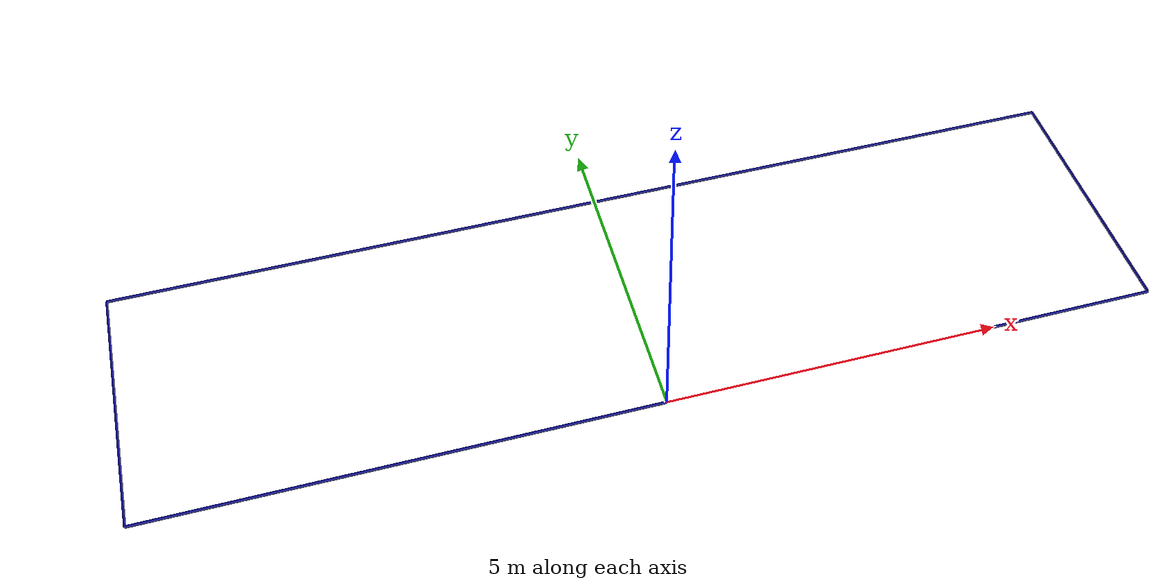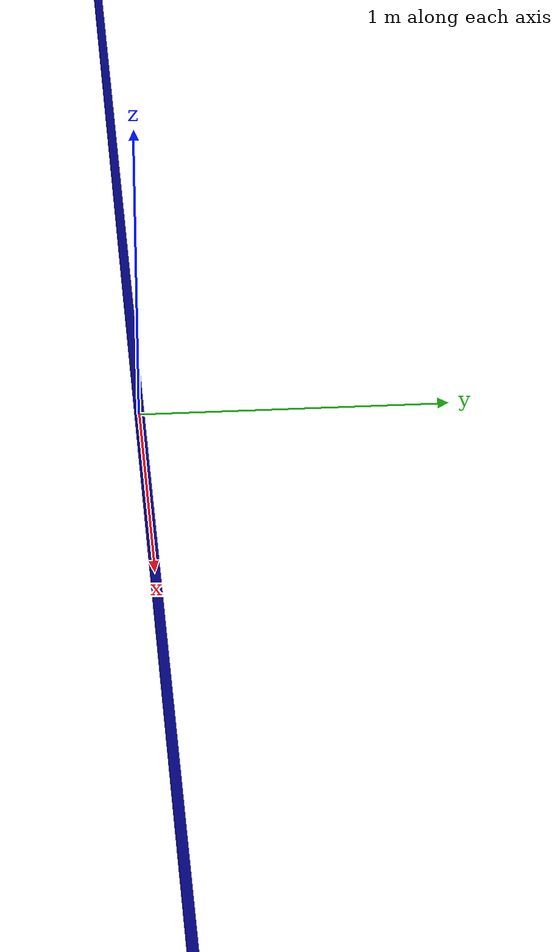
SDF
<?xml version='1.0'?>
<sdf version='1.4'>
  <model name="single-I">
    <static>true</static>

    <link name='left_side'>
      <pose>0 0 0 0 0 1.5707</pose>
      <collision name='collision'>
        <geometry>
         <box>
            <size>0.03 15 .03</size>
         </box>
        </geometry>
      </collision>

      <visual name='lvisual'>
        <geometry>
          <box>
            <size>0.03 15 .03</size>
         </box>
        </geometry>
        <material>
          <ambient>0.0 0.0 0.5 1.0</ambient>
          <diffuse>0.0 0.0 .5 1.00</diffuse>
          <specular>0.0 0.0 .5 1.0</specular>
          <emissive>0.0 0.0 .5 1.0</emissive>
        </material>
      </visual>

    </link>
    <link name='right_side'>

      <pose>0 4 0 0 0 1.5707</pose>
      <collision name='rcollision'>
        <geometry>
          <box>
            <size>0.03 15 .03</size>
         </box>
        </geometry>
      </collision>

      <visual name='rvisual'>
        <geometry>
          <box>
            <size>0.03 15 .03</size>
         </box>
        </geometry>
        <material>
          <ambient>0.0 0.0 0.5 1.0</ambient>
          <diffuse>0.0 0.0 .5 1.00</diffuse>
          <specular>0.0 0.0 .5 1.0</specular>
          <emissive>0.0 0.0 .5 1.0</emissive>
        </material>
      </visual>

    </link>
    <link name='garage_side'>

      <pose>7.5 2 0 0 0 0</pose>
      <collision name='gcollision'>
        <geometry>
          <box>
            <size>0.03 4 .03</size>
         </box>
        </geometry>
      </collision>

      <visual name='gvisual'>
        <geometry>
          <box>
            <size>0.03 4 .03</size>
         </box>
        </geometry>
        <material>
          <ambient>0.0 0.0 0.5 1.0</ambient>
          <diffuse>0.0 0.0 .5 1.00</diffuse>
          <specular>0.0 0.0 .5 1.0</specular>
          <emissive>0.0 0.0 .5 1.0</emissive>
        </material>
      </visual>

    </link>
    <link name='manuevering_side'>

      <pose>-7.5 2 0 0 0 0</pose>
      <collision name='mcollision'>
        <geometry>
          <box>
            <size>0.03 4 .03</size>
         </box>
        </geometry>
      </collision>

      <visual name='mvisual'>
        <geometry>
          <box>
            <size>0.03 4 .03</size>
         </box>
        </geometry>
        <material>
          <ambient>0.0 0.0 0.5 1.0</ambient>
          <diffuse>0.0 0.0 .5 1.00</diffuse>
          <specular>0.0 0.0 .5 1.0</specular>
          <emissive>0.0 0.0 .5 1.0</emissive>
        </material>
      </visual>

    </link>
    <joint type='fixed' name='gr'>
      <child>right_side</child>
      <parent>garage_side</parent>
    </joint>
    <joint type='fixed' name='gl'>
      <child>left_side</child>
      <parent>garage_side</parent>
    </joint>
    <joint type='fixed' name='mr'>
      <child>right_side</child>
      <parent>manuevering_side</parent>
    </joint>
    <joint type='fixed' name='ml'>
      <child>manuevering_side</child>
      <parent>left_side</parent>
    </joint>

  </model>
</sdf>
